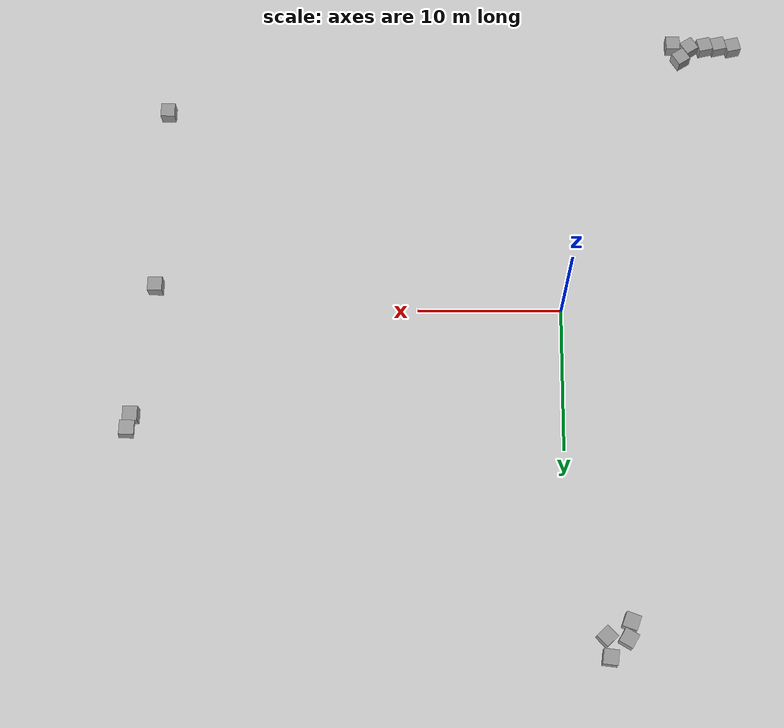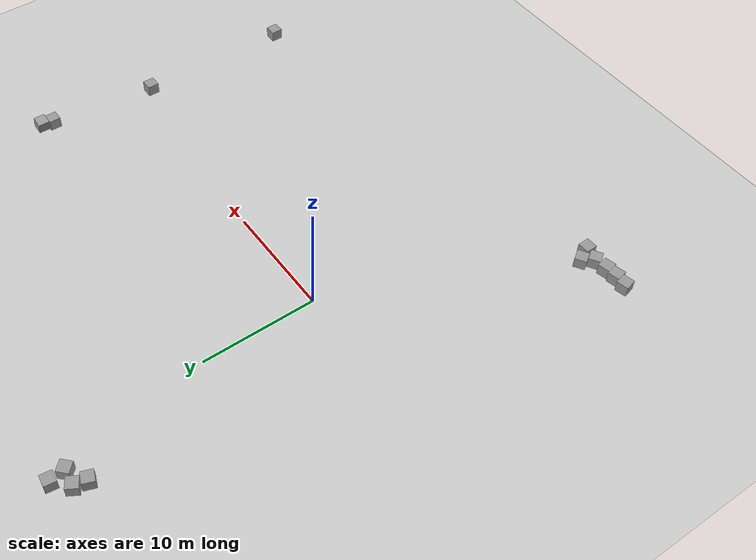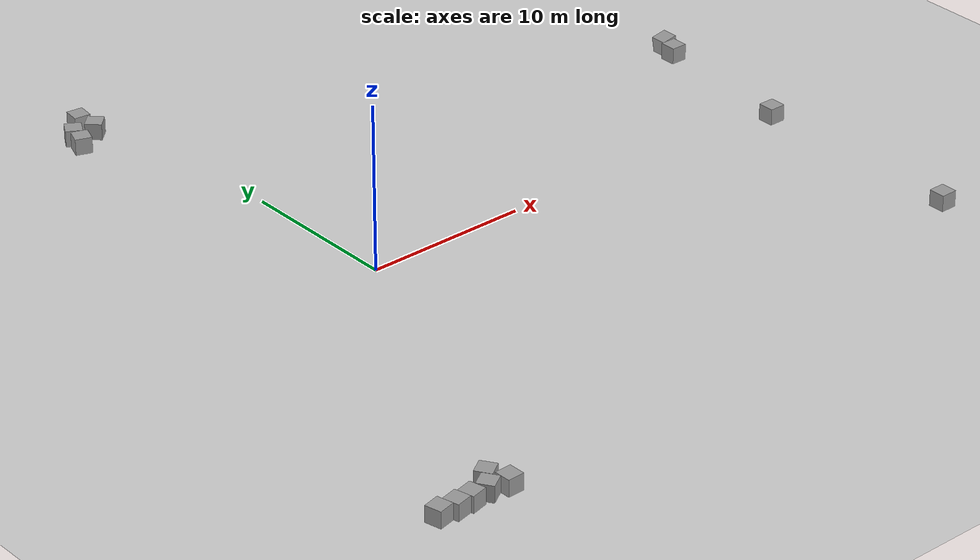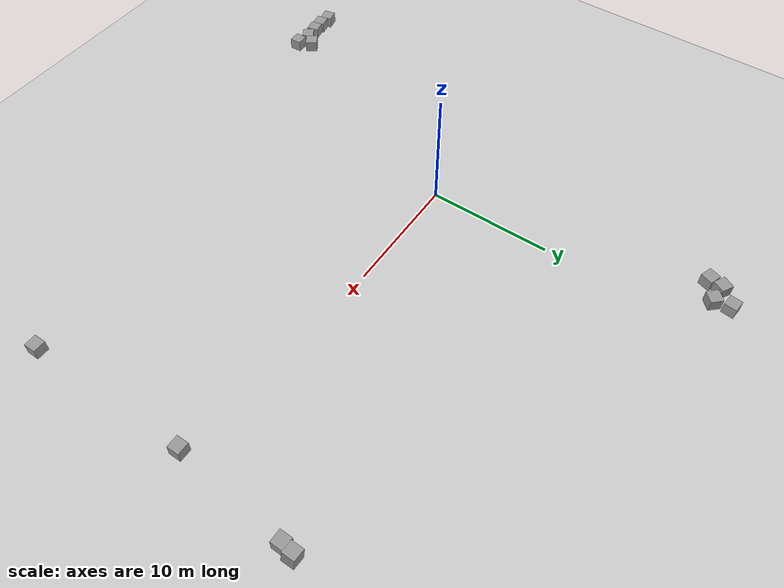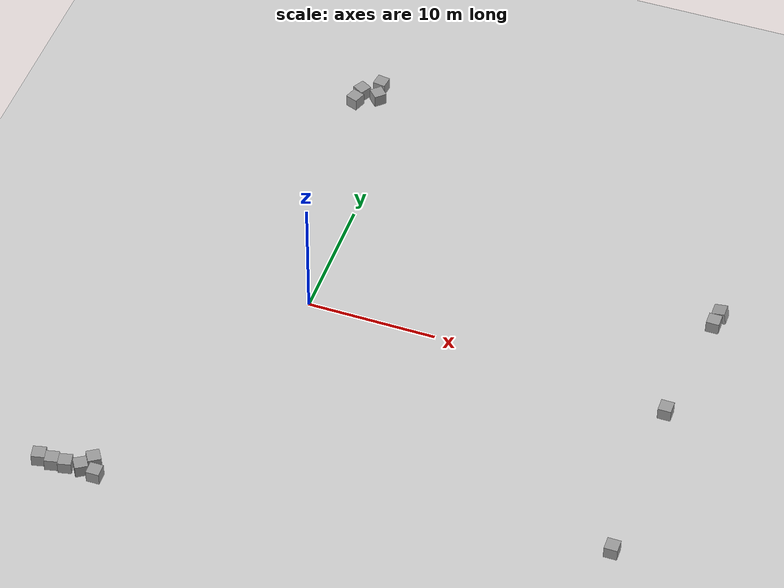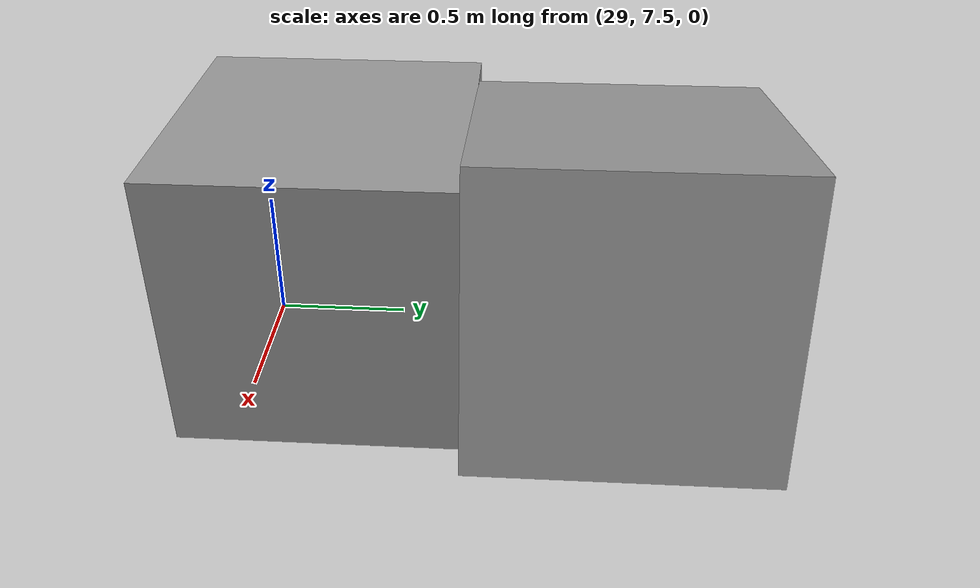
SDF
<sdf version="1.6">
 <world name="default">
  <model name="ground_plane">
   <static>1</static>
   <link name="link">
    <collision name="collision">
     <geometry><plane><normal>0 0 1</normal><size>100 100</size></plane></geometry>
     <surface><friction><ode><mu>100</mu><mu2>50</mu2></ode></friction></surface>
    </collision>
    <visual name="visual">
     <cast_shadows>0</cast_shadows>
     <geometry><plane><normal>0 0 1</normal><size>100 100</size></plane></geometry>
     <material>
      <script><uri>file://media/materials/scripts/gazebo.material</uri><name>Gazebo/Grey</name></script>
     </material>
    </visual>
   </link>
  </model>
  <light name="sun" type="directional">
   <pose>0 0 10 0 -0 0</pose>
   <diffuse>0.8 0.8 0.8 1</diffuse>
   <specular>0.1 0.1 0.1 1</specular>
   <attenuation>
    <range>1000</range>
    <constant>0.9</constant>
    <linear>0.01</linear>
    <quadratic>0.001</quadratic>
   </attenuation>
   <direction>-0.5 0.5 -1</direction>
  </light>
  <gravity>0 0 -9.8</gravity>
  <magnetic_field>6e-06 2.3e-05 -4.2e-05</magnetic_field>
  <atmosphere type="adiabatic"/>
  <physics name="default_physics" default="0" type="ode">
   <max_step_size>0.001</max_step_size>
   <real_time_factor>1</real_time_factor>
   <real_time_update_rate>1000</real_time_update_rate>
  </physics>
  <scene><ambient>0.4 0.4 0.4 1</ambient><background>0.7 0.7 0.7 1</background><shadows>1</shadows></scene>
  <spherical_coordinates>
   <surface_model>EARTH_WGS84</surface_model>
   <latitude_deg>0</latitude_deg>
   <longitude_deg>0</longitude_deg>
   <elevation>0</elevation>
   <heading_deg>0</heading_deg>
  </spherical_coordinates>
  <model name="unit_box_0">
   <pose>-9.14399 -19.7136 0.5 0 -0 0.570809</pose>
   <link name="link">
    <inertial>
     <mass>1</mass>
     <inertia>
      <ixx>0.166667</ixx>
      <ixy>0</ixy>
      <ixz>0</ixz>
      <iyy>0.166667</iyy>
      <iyz>0</iyz>
      <izz>0.166667</izz>
     </inertia>
    </inertial>
    <collision name="collision"><geometry><box><size>1 1 1</size></box></geometry></collision>
    <visual name="visual">
     <geometry><box><size>1 1 1</size></box></geometry>
     <material>
      <script><name>Gazebo/Grey</name><uri>file://media/materials/scripts/gazebo.material</uri></script>
     </material>
    </visual>
   </link>
  </model>
  <model name="unit_box_1_0">
   <pose>-2.45343 22.4637 0.5 0 -0 0.765343</pose>
   <link name="link">
    <inertial>
     <mass>1</mass>
     <inertia>
      <ixx>0.166667</ixx>
      <ixy>0</ixy>
      <ixz>0</ixz>
      <iyy>0.166667</iyy>
      <iyz>0</iyz>
      <izz>0.166667</izz>
     </inertia>
    </inertial>
    <collision name="collision"><geometry><box><size>1 1 1</size></box></geometry></collision>
    <visual name="visual">
     <geometry><box><size>1 1 1</size></box></geometry>
     <material>
      <script><name>Gazebo/Grey</name><uri>file://media/materials/scripts/gazebo.material</uri></script>
     </material>
    </visual>
   </link>
  </model>
  <model name="unit_box_1_1">
   <pose>-4.05764 21.5138 0.5 0 0 -0.348041</pose>
   <link name="link">
    <inertial>
     <mass>1</mass>
     <inertia>
      <ixx>0.166667</ixx>
      <ixy>0</ixy>
      <ixz>0</ixz>
      <iyy>0.166667</iyy>
      <iyz>0</iyz>
      <izz>0.166667</izz>
     </inertia>
    </inertial>
    <collision name="collision"><geometry><box><size>1 1 1</size></box></geometry></collision>
    <visual name="visual">
     <geometry><box><size>1 1 1</size></box></geometry>
     <material>
      <script><name>Gazebo/Grey</name><uri>file://media/materials/scripts/gazebo.material</uri></script>
     </material>
    </visual>
   </link>
  </model>
  <model name="unit_box_1_3">
   <pose>28.294 -1.56728 0.5 0 -0 1e-06</pose>
   <link name="link">
    <inertial>
     <mass>1</mass>
     <inertia>
      <ixx>0.166667</ixx>
      <ixy>0</ixy>
      <ixz>0</ixz>
      <iyy>0.166667</iyy>
      <iyz>0</iyz>
      <izz>0.166667</izz>
     </inertia>
    </inertial>
    <collision name="collision"><geometry><box><size>1 1 1</size></box></geometry></collision>
    <visual name="visual">
     <geometry><box><size>1 1 1</size></box></geometry>
     <material>
      <script><name>Gazebo/Grey</name><uri>file://media/materials/scripts/gazebo.material</uri></script>
     </material>
    </visual>
   </link>
  </model>
  <model name="unit_box_1_4">
   <pose>28.2793 -15.0921 0.499995 1e-05 -0 0</pose>
   <link name="link">
    <inertial>
     <mass>1</mass>
     <inertia>
      <ixx>0.166667</ixx>
      <ixy>0</ixy>
      <ixz>0</ixz>
      <iyy>0.166667</iyy>
      <iyz>0</iyz>
      <izz>0.166667</izz>
     </inertia>
    </inertial>
    <collision name="collision"><geometry><box><size>1 1 1</size></box></geometry></collision>
    <visual name="visual">
     <geometry><box><size>1 1 1</size></box></geometry>
     <material>
      <script><name>Gazebo/Grey</name><uri>file://media/materials/scripts/gazebo.material</uri></script>
     </material>
    </visual>
   </link>
  </model>
  <model name="unit_box_1">
   <pose>29.5305 8.80524 0.582263 0.000446 -0.160773 -0.000328</pose>
   <link name="link">
    <inertial>
     <mass>1</mass>
     <inertia>
      <ixx>0.166667</ixx>
      <ixy>0</ixy>
      <ixz>0</ixz>
      <iyy>0.166667</iyy>
      <iyz>0</iyz>
      <izz>0.166667</izz>
     </inertia>
    </inertial>
    <collision name="collision"><geometry><box><size>1 1 1</size></box></geometry></collision>
    <visual name="visual">
     <geometry><box><size>1 1 1</size></box></geometry>
     <material>
      <script><name>Gazebo/Grey</name><uri>file://media/materials/scripts/gazebo.material</uri></script>
     </material>
    </visual>
   </link>
  </model>
  <model name="unit_box_2">
   <pose>29.3176 7.80594 0.509531 -0.000507 0.006461 -0.000527</pose>
   <link name="link">
    <inertial>
     <mass>1</mass>
     <inertia>
      <ixx>0.166667</ixx>
      <ixy>0</ixy>
      <ixz>0</ixz>
      <iyy>0.166667</iyy>
      <iyz>0</iyz>
      <izz>0.166667</izz>
     </inertia>
    </inertial>
    <collision name="collision"><geometry><box><size>1 1 1</size></box></geometry></collision>
    <visual name="visual">
     <geometry><box><size>1 1 1</size></box></geometry>
     <material>
      <script><name>Gazebo/Grey</name><uri>file://media/materials/scripts/gazebo.material</uri></script>
     </material>
    </visual>
   </link>
  </model>
  <model name="unit_box_3">
   <pose>-9.78098 -20.6168 0.499998 -4e-06 -1e-06 -1.0084</pose>
   <link name="link">
    <inertial>
     <mass>1</mass>
     <inertia>
      <ixx>0.166667</ixx>
      <ixy>0</ixy>
      <ixz>0</ixz>
      <iyy>0.166667</iyy>
      <iyz>0</iyz>
      <izz>0.166667</izz>
     </inertia>
    </inertial>
    <collision name="collision"><geometry><box><size>1 1 1</size></box></geometry></collision>
    <visual name="visual">
     <geometry><box><size>1 1 1</size></box></geometry>
     <material>
      <script><name>Gazebo/Grey</name><uri>file://media/materials/scripts/gazebo.material</uri></script>
     </material>
    </visual>
   </link>
  </model>
  <model name="unit_box_4">
   <pose>-8.58953 -20.8465 0.5 0 -0 0.02313</pose>
   <link name="link">
    <inertial>
     <mass>1</mass>
     <inertia>
      <ixx>0.166667</ixx>
      <ixy>0</ixy>
      <ixz>0</ixz>
      <iyy>0.166667</iyy>
      <iyz>0</iyz>
      <izz>0.166667</izz>
     </inertia>
    </inertial>
    <collision name="collision"><geometry><box><size>1 1 1</size></box></geometry></collision>
    <visual name="visual">
     <geometry><box><size>1 1 1</size></box></geometry>
     <material>
      <script><name>Gazebo/Grey</name><uri>file://media/materials/scripts/gazebo.material</uri></script>
     </material>
    </visual>
   </link>
  </model>
  <model name="unit_box_5">
   <pose>-2.64061 23.7942 0.5 0 0 -0.122243</pose>
   <link name="link">
    <inertial>
     <mass>1</mass>
     <inertia>
      <ixx>0.166667</ixx>
      <ixy>0</ixy>
      <ixz>0</ixz>
      <iyy>0.166667</iyy>
      <iyz>0</iyz>
      <izz>0.166667</izz>
     </inertia>
    </inertial>
    <collision name="collision"><geometry><box><size>1 1 1</size></box></geometry></collision>
    <visual name="visual">
     <geometry><box><size>1 1 1</size></box></geometry>
     <material>
      <script><name>Gazebo/Grey</name><uri>file://media/materials/scripts/gazebo.material</uri></script>
     </material>
    </visual>
   </link>
  </model>
  <model name="unit_box_6">
   <pose>-3.85067 22.593 0.5 0 0 -0.522623</pose>
   <link name="link">
    <inertial>
     <mass>1</mass>
     <inertia>
      <ixx>0.166667</ixx>
      <ixy>0</ixy>
      <ixz>0</ixz>
      <iyy>0.166667</iyy>
      <iyz>0</iyz>
      <izz>0.166667</izz>
     </inertia>
    </inertial>
    <collision name="collision"><geometry><box><size>1 1 1</size></box></geometry></collision>
    <visual name="visual">
     <geometry><box><size>1 1 1</size></box></geometry>
     <material>
      <script><name>Gazebo/Grey</name><uri>file://media/materials/scripts/gazebo.material</uri></script>
     </material>
    </visual>
   </link>
  </model>
  <model name="unit_box_7">
   <pose>-12.98 -20.7093 0.499998 4e-06 1e-06 0.22597</pose>
   <link name="link">
    <inertial>
     <mass>1</mass>
     <inertia>
      <ixx>0.166667</ixx>
      <ixy>0</ixy>
      <ixz>0</ixz>
      <iyy>0.166667</iyy>
      <iyz>0</iyz>
      <izz>0.166667</izz>
     </inertia>
    </inertial>
    <collision name="collision"><geometry><box><size>1 1 1</size></box></geometry></collision>
    <visual name="visual">
     <geometry><box><size>1 1 1</size></box></geometry>
     <material>
      <script><name>Gazebo/Grey</name><uri>file://media/materials/scripts/gazebo.material</uri></script>
     </material>
    </visual>
   </link>
  </model>
  <model name="unit_box_8">
   <pose>-11.9354 -20.7875 0.499995 -1e-05 0 0.226893</pose>
   <link name="link">
    <inertial>
     <mass>1</mass>
     <inertia>
      <ixx>0.166667</ixx>
      <ixy>0</ixy>
      <ixz>0</ixz>
      <iyy>0.166667</iyy>
      <iyz>0</iyz>
      <izz>0.166667</izz>
     </inertia>
    </inertial>
    <collision name="collision"><geometry><box><size>1 1 1</size></box></geometry></collision>
    <visual name="visual">
     <geometry><box><size>1 1 1</size></box></geometry>
     <material>
      <script><name>Gazebo/Grey</name><uri>file://media/materials/scripts/gazebo.material</uri></script>
     </material>
    </visual>
   </link>
  </model>
  <model name="unit_box_9">
   <pose>-10.9235 -20.7216 0.5 0 -0 0.228534</pose>
   <link name="link">
    <inertial>
     <mass>1</mass>
     <inertia>
      <ixx>0.166667</ixx>
      <ixy>0</ixy>
      <ixz>0</ixz>
      <iyy>0.166667</iyy>
      <iyz>0</iyz>
      <izz>0.166667</izz>
     </inertia>
    </inertial>
    <collision name="collision"><geometry><box><size>1 1 1</size></box></geometry></collision>
    <visual name="visual">
     <geometry><box><size>1 1 1</size></box></geometry>
     <material>
      <script><name>Gazebo/Grey</name><uri>file://media/materials/scripts/gazebo.material</uri></script>
     </material>
    </visual>
   </link>
  </model>
 </world>
</sdf>
